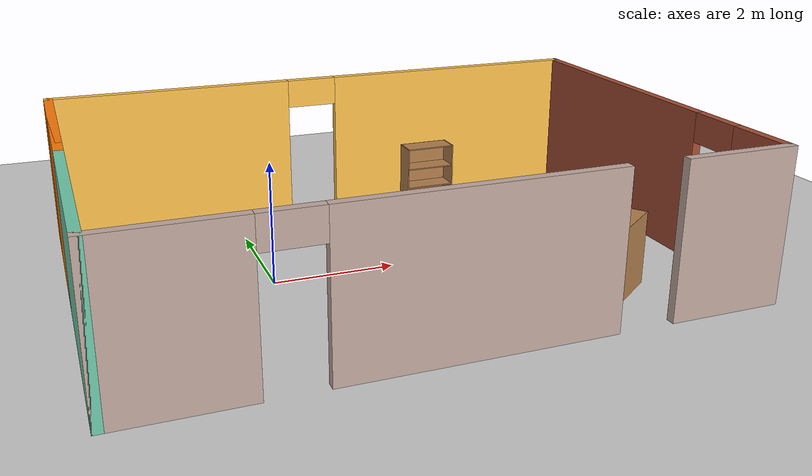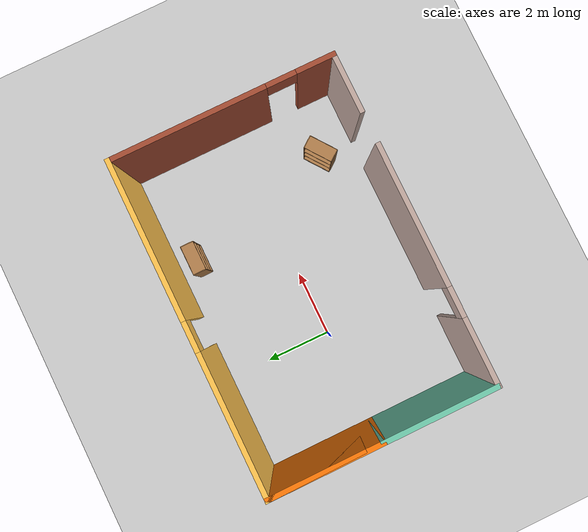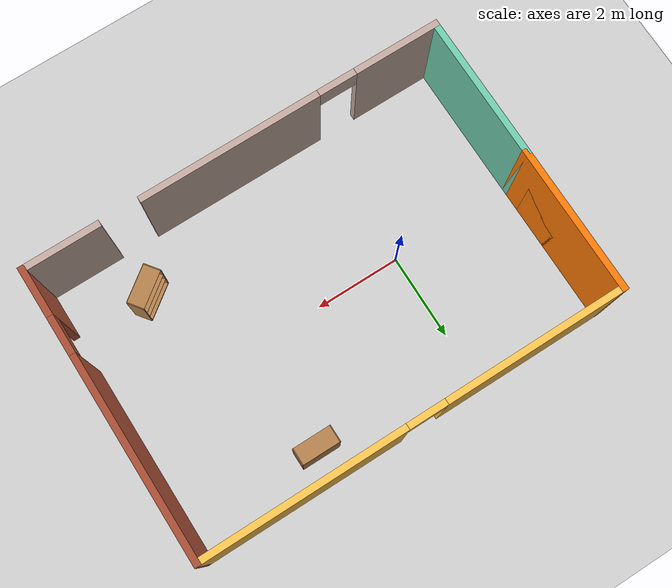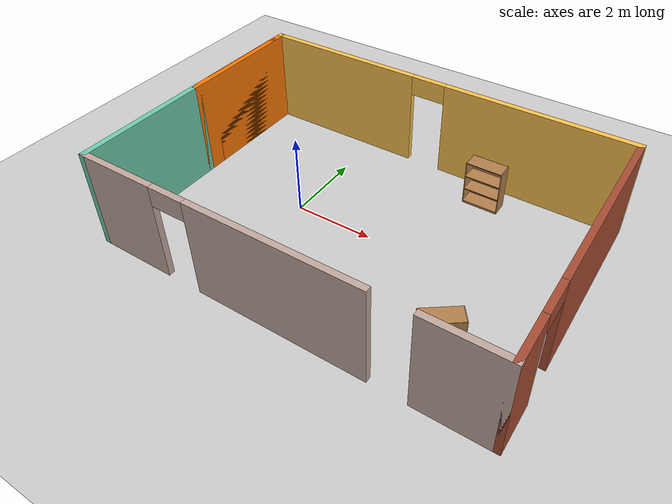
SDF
<sdf version="1.7">
 <world name="default">
  <light name="sun" type="directional">
   <pose>0 0 10 0 -0 0</pose>
   <diffuse>0.8 0.8 0.8 1</diffuse>
   <specular>0.2 0.2 0.2 1</specular>
   <attenuation>
    <range>1000</range>
    <constant>0.9</constant>
    <linear>0.01</linear>
    <quadratic>0.001</quadratic>
   </attenuation>
   <direction>-0.5 0.1 -0.9</direction>
   <spot><inner_angle>0</inner_angle><outer_angle>0</outer_angle><falloff>0</falloff></spot>
  </light>
  <model name="ground_plane">
   <static>1</static>
   <link name="link">
    <collision name="collision">
     <geometry><plane><normal>0 0 1</normal><size>100 100</size></plane></geometry>
     <surface><friction><ode><mu>100</mu><mu2>50</mu2></ode></friction></surface>
    </collision>
    <visual name="visual">
     <cast_shadows>0</cast_shadows>
     <geometry><plane><normal>0 0 1</normal><size>100 100</size></plane></geometry>
     <material>
      <script><uri>file://media/materials/scripts/gazebo.material</uri><name>Gazebo/Grey</name></script>
     </material>
    </visual>
   </link>
  </model>
  <gravity>0 0 -9.8</gravity>
  <magnetic_field>6e-06 2.3e-05 -4.2e-05</magnetic_field>
  <atmosphere type="adiabatic"/>
  <physics type="ode">
   <max_step_size>0.001</max_step_size>
   <real_time_factor>1</real_time_factor>
   <real_time_update_rate>1000</real_time_update_rate>
  </physics>
  <scene><ambient>0.4 0.4 0.4 1</ambient><background>0.7 0.7 0.7 1</background><shadows>1</shadows></scene>
  <audio><device>default</device></audio>
  <spherical_coordinates>
   <surface_model>EARTH_WGS84</surface_model>
   <latitude_deg>0</latitude_deg>
   <longitude_deg>0</longitude_deg>
   <elevation>0</elevation>
   <heading_deg>0</heading_deg>
  </spherical_coordinates>
  <model name="map2">
   <pose>1.91105 -0.014767 0 0 -0 0</pose>
   <link name="Wall_12">
    <pose>-4.925 1.675 0 0 -0 1.5708</pose>
    <visual name="Wall_12_Visual_0">
     <pose>0 0 1.25 0 -0 0</pose>
     <geometry><box><size>3.5 0.15 2.5</size></box></geometry>
     <material>
      <script><uri>file://media/materials/scripts/gazebo.material</uri><name>Gazebo/Grey</name></script>
      <ambient>0.996078 0.47451 0.0196078 1</ambient>
     </material>
     <meta><layer>0</layer></meta>
    </visual>
    <collision name="Wall_12_Collision_0">
     <geometry><box><size>3.5 0.15 2.5</size></box></geometry>
     <pose>0 0 1.25 0 -0 0</pose>
    </collision>
    <visual name="Wall_12_Visual_1">
     <pose>0.282641 0 1.25 0 -0 0</pose>
     <geometry><box><size>2.93472 0.15 2.5</size></box></geometry>
     <material>
      <script><uri>file://media/materials/scripts/gazebo.material</uri><name>Gazebo/Grey</name></script>
      <ambient>0.996078 0.47451 0.0196078 1</ambient>
     </material>
     <meta><layer>0</layer></meta>
    </visual>
    <collision name="Wall_12_Collision_1">
     <geometry><box><size>2.93472 0.15 2.5</size></box></geometry>
     <pose>0.282641 0 1.25 0 -0 0</pose>
    </collision>
   </link>
   <link name="Wall_13">
    <pose>0 3.35 0 0 -0 0</pose>
    <visual name="Wall_13_Visual_0">
     <pose>-2.8569 0 1.25 0 -0 0</pose>
     <geometry><box><size>4.28619 0.15 2.5</size></box></geometry>
     <material>
      <script><uri>file://media/materials/scripts/gazebo.material</uri><name>Gazebo/Grey</name></script>
      <ambient>1 0.764706 0.305882 1</ambient>
     </material>
     <meta><layer>0</layer></meta>
    </visual>
    <collision name="Wall_13_Collision_0">
     <geometry><box><size>4.28619 0.15 2.5</size></box></geometry>
     <pose>-2.8569 0 1.25 0 -0 0</pose>
    </collision>
    <visual name="Wall_13_Visual_1">
     <pose>2.5931 0 1.25 0 -0 0</pose>
     <geometry><box><size>4.81381 0.15 2.5</size></box></geometry>
     <material>
      <script><uri>file://media/materials/scripts/gazebo.material</uri><name>Gazebo/Grey</name></script>
      <ambient>1 0.764706 0.305882 1</ambient>
     </material>
     <meta><layer>0</layer></meta>
    </visual>
    <collision name="Wall_13_Collision_1">
     <geometry><box><size>4.81381 0.15 2.5</size></box></geometry>
     <pose>2.5931 0 1.25 0 -0 0</pose>
    </collision>
    <visual name="Wall_13_Visual_2">
     <pose>-0.263808 0 2.25 0 -0 0</pose>
     <geometry><box><size>0.9 0.15 0.5</size></box></geometry>
     <material>
      <script><uri>file://media/materials/scripts/gazebo.material</uri><name>Gazebo/Grey</name></script>
      <ambient>1 0.764706 0.305882 1</ambient>
     </material>
     <meta><layer>0</layer></meta>
    </visual>
    <collision name="Wall_13_Collision_2">
     <geometry><box><size>0.9 0.15 0.5</size></box></geometry>
     <pose>-0.263808 0 2.25 0 -0 0</pose>
    </collision>
   </link>
   <link name="Wall_16">
    <pose>0 -3.35 0 0 -0 0</pose>
    <visual name="Wall_16_Visual_0">
     <pose>-3.96752 0 1.25 0 -0 0</pose>
     <geometry><box><size>2.06495 0.15 2.5</size></box></geometry>
     <material>
      <script><uri>file://media/materials/scripts/gazebo.material</uri><name>Gazebo/Grey</name></script>
      <ambient>0.760784 0.662745 0.627451 1</ambient>
     </material>
     <meta><layer>0</layer></meta>
    </visual>
    <collision name="Wall_16_Collision_0">
     <geometry><box><size>2.06495 0.15 2.5</size></box></geometry>
     <pose>-3.96752 0 1.25 0 -0 0</pose>
    </collision>
    <visual name="Wall_16_Visual_1">
     <pose>0.103483 0 1.25 0 -0 0</pose>
     <geometry><box><size>4.27706 0.15 2.5</size></box></geometry>
     <material>
      <script><uri>file://media/materials/scripts/gazebo.material</uri><name>Gazebo/Grey</name></script>
      <ambient>0.760784 0.662745 0.627451 1</ambient>
     </material>
     <meta><layer>0</layer></meta>
    </visual>
    <collision name="Wall_16_Collision_1">
     <geometry><box><size>4.27706 0.15 2.5</size></box></geometry>
     <pose>0.103483 0 1.25 0 -0 0</pose>
    </collision>
    <visual name="Wall_16_Visual_2">
     <pose>4.07101 0 1.25 0 -0 0</pose>
     <geometry><box><size>1.85799 0.15 2.5</size></box></geometry>
     <material>
      <script><uri>file://media/materials/scripts/gazebo.material</uri><name>Gazebo/Grey</name></script>
      <ambient>0.760784 0.662745 0.627451 1</ambient>
     </material>
     <meta><layer>0</layer></meta>
    </visual>
    <collision name="Wall_16_Collision_2">
     <geometry><box><size>1.85799 0.15 2.5</size></box></geometry>
     <pose>4.07101 0 1.25 0 -0 0</pose>
    </collision>
    <visual name="Wall_16_Visual_3">
     <pose>-2.48505 0 2.25 0 -0 0</pose>
     <geometry><box><size>0.9 0.15 0.5</size></box></geometry>
     <material>
      <script><uri>file://media/materials/scripts/gazebo.material</uri><name>Gazebo/Grey</name></script>
      <ambient>0.760784 0.662745 0.627451 1</ambient>
     </material>
     <meta><layer>0</layer></meta>
    </visual>
    <collision name="Wall_16_Collision_3">
     <geometry><box><size>0.9 0.15 0.5</size></box></geometry>
     <pose>-2.48505 0 2.25 0 -0 0</pose>
    </collision>
    <visual name="Wall_16_Visual_4">
     <pose>2.24201 0 2.25 0 -0 0</pose>
     <geometry><box><size>0 0.15 0.5</size></box></geometry>
     <material>
      <script><uri>file://media/materials/scripts/gazebo.material</uri><name>Gazebo/Grey</name></script>
      <ambient>0.760784 0.662745 0.627451 1</ambient>
     </material>
     <meta><layer>0</layer></meta>
    </visual>
    <collision name="Wall_16_Collision_4">
     <geometry><box><size>0 0.15 0.5</size></box></geometry>
     <pose>2.24201 0 2.25 0 -0 0</pose>
    </collision>
   </link>
   <link name="Wall_17">
    <pose>4.925 -0 0 0 -0 1.5708</pose>
    <visual name="Wall_17_Visual_0">
     <pose>-2.82684 0 1.25 0 -0 0</pose>
     <geometry><box><size>1.19632 0.15 2.5</size></box></geometry>
     <material>
      <script><uri>file://media/materials/scripts/gazebo.material</uri><name>Gazebo/Bricks</name></script>
      <ambient>1 1 1 1</ambient>
     </material>
     <meta><layer>0</layer></meta>
    </visual>
    <collision name="Wall_17_Collision_0">
     <geometry><box><size>1.19632 0.15 2.5</size></box></geometry>
     <pose>-2.82684 0 1.25 0 -0 0</pose>
    </collision>
    <visual name="Wall_17_Visual_1">
     <pose>1.04816 0 1.25 0 -0 0</pose>
     <geometry><box><size>4.75368 0.15 2.5</size></box></geometry>
     <material>
      <script><uri>file://media/materials/scripts/gazebo.material</uri><name>Gazebo/Bricks</name></script>
      <ambient>1 1 1 1</ambient>
     </material>
     <meta><layer>0</layer></meta>
    </visual>
    <collision name="Wall_17_Collision_1">
     <geometry><box><size>4.75368 0.15 2.5</size></box></geometry>
     <pose>1.04816 0 1.25 0 -0 0</pose>
    </collision>
    <visual name="Wall_17_Visual_2">
     <pose>-1.77869 0 2.25 0 -0 0</pose>
     <geometry><box><size>0.9 0.15 0.5</size></box></geometry>
     <material>
      <script><uri>file://media/materials/scripts/gazebo.material</uri><name>Gazebo/Bricks</name></script>
      <ambient>1 1 1 1</ambient>
     </material>
     <meta><layer>0</layer></meta>
    </visual>
    <collision name="Wall_17_Collision_2">
     <geometry><box><size>0.9 0.15 0.5</size></box></geometry>
     <pose>-1.77869 0 2.25 0 -0 0</pose>
    </collision>
   </link>
   <link name="Wall_8">
    <collision name="Wall_8_Collision">
     <geometry><box><size>3.5 0.15 2.5</size></box></geometry>
     <pose>0 0 1.25 0 -0 0</pose>
    </collision>
    <visual name="Wall_8_Visual">
     <pose>0 0 1.25 0 -0 0</pose>
     <geometry><box><size>3.5 0.15 2.5</size></box></geometry>
     <material>
      <script><uri>file://media/materials/scripts/gazebo.material</uri><name>Gazebo/Grey</name></script>
      <ambient>0.435294 0.796078 0.67451 1</ambient>
     </material>
     <meta><layer>0</layer></meta>
    </visual>
    <pose>-4.925 -1.675 0 0 -0 -1.5708</pose>
   </link>
   <static>1</static>
  </model>
  <model name="bookshelf">
   <static>1</static>
   <link name="link">
    <inertial><mass>1</mass></inertial>
    <collision name="back">
     <pose>0 0.005 0.6 0 -0 0</pose>
     <geometry><box><size>0.9 0.01 1.2</size></box></geometry>
    </collision>
    <visual name="visual1">
     <pose>0 0.005 0.6 0 -0 0</pose>
     <geometry><box><size>0.9 0.01 1.2</size></box></geometry>
     <material>
      <script><uri>file://media/materials/scripts/gazebo.material</uri><name>Gazebo/Wood</name></script>
     </material>
    </visual>
    <collision name="left_side">
     <pose>0.45 -0.195 0.6 0 -0 0</pose>
     <geometry><box><size>0.02 0.4 1.2</size></box></geometry>
    </collision>
    <visual name="visual2">
     <pose>0.45 -0.195 0.6 0 -0 0</pose>
     <geometry><box><size>0.02 0.4 1.2</size></box></geometry>
     <material>
      <script><uri>file://media/materials/scripts/gazebo.material</uri><name>Gazebo/Wood</name></script>
     </material>
    </visual>
    <collision name="right_side">
     <pose>-0.45 -0.195 0.6 0 -0 0</pose>
     <geometry><box><size>0.02 0.4 1.2</size></box></geometry>
    </collision>
    <visual name="visual3">
     <pose>-0.45 -0.195 0.6 0 -0 0</pose>
     <geometry><box><size>0.02 0.4 1.2</size></box></geometry>
     <material>
      <script><uri>file://media/materials/scripts/gazebo.material</uri><name>Gazebo/Wood</name></script>
     </material>
    </visual>
    <collision name="bottom">
     <pose>0 -0.195 0.03 0 -0 0</pose>
     <geometry><box><size>0.88 0.4 0.06</size></box></geometry>
    </collision>
    <visual name="visual4">
     <pose>0 -0.195 0.03 0 -0 0</pose>
     <geometry><box><size>0.88 0.4 0.06</size></box></geometry>
     <material>
      <script><uri>file://media/materials/scripts/gazebo.material</uri><name>Gazebo/Wood</name></script>
     </material>
    </visual>
    <collision name="top">
     <pose>0 -0.195 1.19 0 -0 0</pose>
     <geometry><box><size>0.88 0.4 0.02</size></box></geometry>
    </collision>
    <visual name="visual5">
     <pose>0 -0.195 1.19 0 -0 0</pose>
     <geometry><box><size>0.88 0.4 0.02</size></box></geometry>
     <material>
      <script><uri>file://media/materials/scripts/gazebo.material</uri><name>Gazebo/Wood</name></script>
     </material>
    </visual>
    <collision name="low_shelf">
     <pose>0 -0.195 0.43 0 -0 0</pose>
     <geometry><box><size>0.88 0.4 0.02</size></box></geometry>
    </collision>
    <visual name="visual6">
     <pose>0 -0.195 0.43 0 -0 0</pose>
     <geometry><box><size>0.88 0.4 0.02</size></box></geometry>
     <material>
      <script><uri>file://media/materials/scripts/gazebo.material</uri><name>Gazebo/Wood</name></script>
     </material>
    </visual>
    <collision name="high_shelf">
     <pose>0 -0.195 0.8 0 -0 0</pose>
     <geometry><box><size>0.88 0.4 0.02</size></box></geometry>
    </collision>
    <visual name="visual7">
     <pose>0 -0.195 0.8 0 -0 0</pose>
     <geometry><box><size>0.88 0.4 0.02</size></box></geometry>
     <material>
      <script><uri>file://media/materials/scripts/gazebo.material</uri><name>Gazebo/Wood</name></script>
     </material>
    </visual>
   </link>
   <pose>3.71375 2.78817 0 0 -0 0</pose>
  </model>
  <model name="bookshelf_clone">
   <static>1</static>
   <link name="link">
    <inertial><mass>1</mass></inertial>
    <collision name="back">
     <pose>0 0.005 0.6 0 -0 0</pose>
     <geometry><box><size>0.9 0.01 1.2</size></box></geometry>
    </collision>
    <visual name="visual1">
     <pose>0 0.005 0.6 0 -0 0</pose>
     <geometry><box><size>0.9 0.01 1.2</size></box></geometry>
     <material>
      <script><uri>file://media/materials/scripts/gazebo.material</uri><name>Gazebo/Wood</name></script>
     </material>
    </visual>
    <collision name="left_side">
     <pose>0.45 -0.195 0.6 0 -0 0</pose>
     <geometry><box><size>0.02 0.4 1.2</size></box></geometry>
    </collision>
    <visual name="visual2">
     <pose>0.45 -0.195 0.6 0 -0 0</pose>
     <geometry><box><size>0.02 0.4 1.2</size></box></geometry>
     <material>
      <script><uri>file://media/materials/scripts/gazebo.material</uri><name>Gazebo/Wood</name></script>
     </material>
    </visual>
    <collision name="right_side">
     <pose>-0.45 -0.195 0.6 0 -0 0</pose>
     <geometry><box><size>0.02 0.4 1.2</size></box></geometry>
    </collision>
    <visual name="visual3">
     <pose>-0.45 -0.195 0.6 0 -0 0</pose>
     <geometry><box><size>0.02 0.4 1.2</size></box></geometry>
     <material>
      <script><uri>file://media/materials/scripts/gazebo.material</uri><name>Gazebo/Wood</name></script>
     </material>
    </visual>
    <collision name="bottom">
     <pose>0 -0.195 0.03 0 -0 0</pose>
     <geometry><box><size>0.88 0.4 0.06</size></box></geometry>
    </collision>
    <visual name="visual4">
     <pose>0 -0.195 0.03 0 -0 0</pose>
     <geometry><box><size>0.88 0.4 0.06</size></box></geometry>
     <material>
      <script><uri>file://media/materials/scripts/gazebo.material</uri><name>Gazebo/Wood</name></script>
     </material>
    </visual>
    <collision name="top">
     <pose>0 -0.195 1.19 0 -0 0</pose>
     <geometry><box><size>0.88 0.4 0.02</size></box></geometry>
    </collision>
    <visual name="visual5">
     <pose>0 -0.195 1.19 0 -0 0</pose>
     <geometry><box><size>0.88 0.4 0.02</size></box></geometry>
     <material>
      <script><uri>file://media/materials/scripts/gazebo.material</uri><name>Gazebo/Wood</name></script>
     </material>
    </visual>
    <collision name="low_shelf">
     <pose>0 -0.195 0.43 0 -0 0</pose>
     <geometry><box><size>0.88 0.4 0.02</size></box></geometry>
    </collision>
    <visual name="visual6">
     <pose>0 -0.195 0.43 0 -0 0</pose>
     <geometry><box><size>0.88 0.4 0.02</size></box></geometry>
     <material>
      <script><uri>file://media/materials/scripts/gazebo.material</uri><name>Gazebo/Wood</name></script>
     </material>
    </visual>
    <collision name="high_shelf">
     <pose>0 -0.195 0.8 0 -0 0</pose>
     <geometry><box><size>0.88 0.4 0.02</size></box></geometry>
    </collision>
    <visual name="visual7">
     <pose>0 -0.195 0.8 0 -0 0</pose>
     <geometry><box><size>0.88 0.4 0.02</size></box></geometry>
     <material>
      <script><uri>file://media/materials/scripts/gazebo.material</uri><name>Gazebo/Wood</name></script>
     </material>
    </visual>
   </link>
   <pose>5.11102 -2.2994 0 0 0 -2.5037</pose>
  </model>
 </world>
</sdf>
